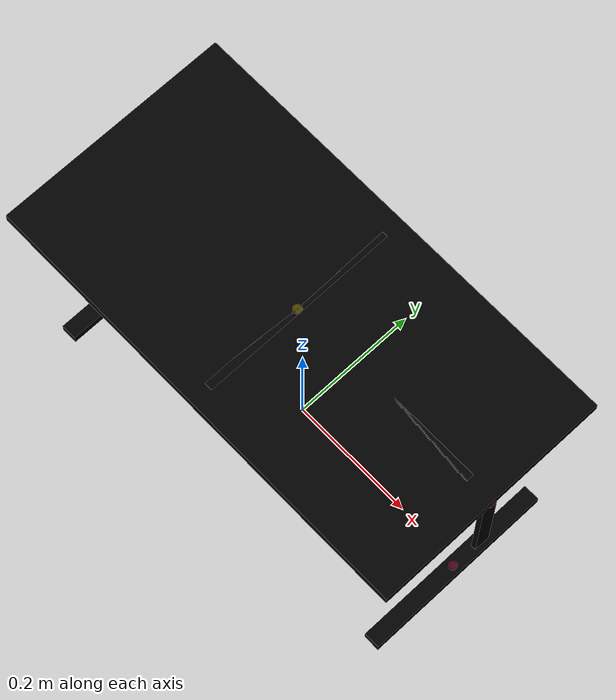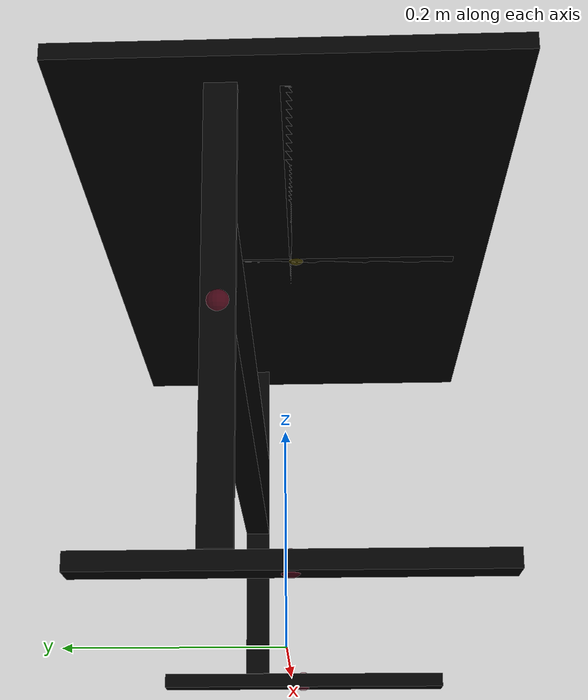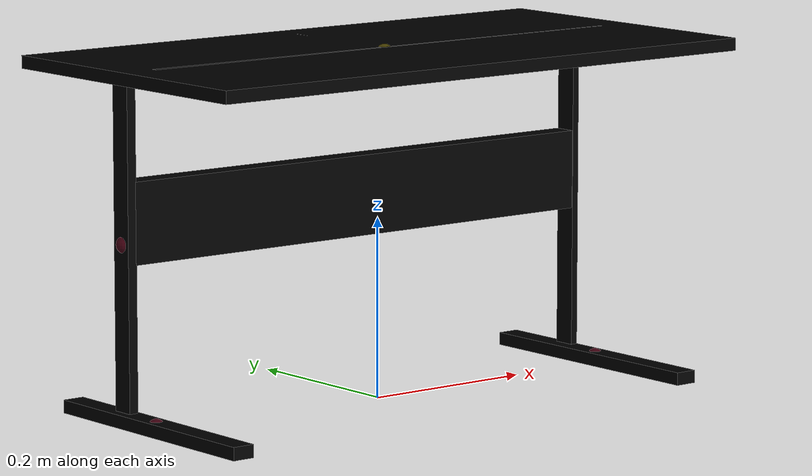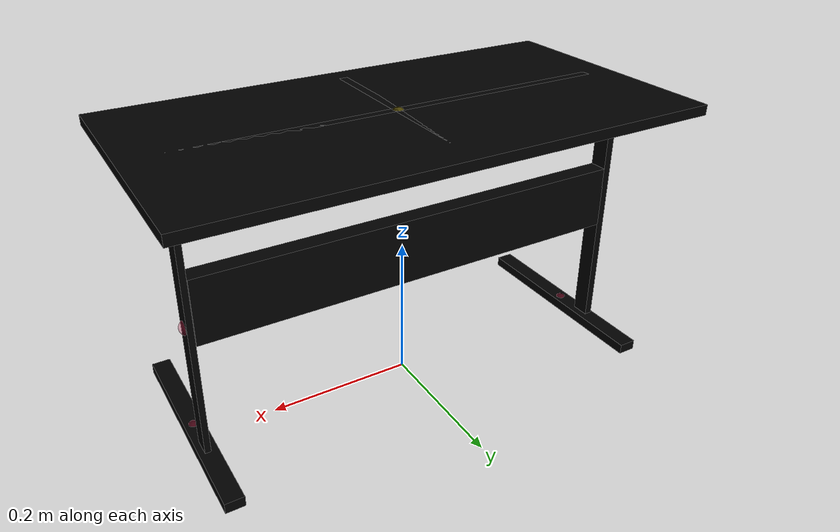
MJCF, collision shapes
<mujoco model="desk_fredrik_0430">
  <custom>
    <numeric data="-0.232087 0.177704 0.003418 0.706993 -0.0127 0.706993 0.0127" name="0_part0_initpos" />
    <numeric data="0.010241 -0.093193 0.012873 0.0 -0.999909 0.0135 -0.0" name="5_part5_initpos" />
    <numeric data="0.492174 0.029834 0.01267 -0.497291 0.497291 -0.502694 0.502694" name="4_part4_initpos" />
    <numeric data="0.204071 0.179597 0.004666 0.013442 -0.706979 -0.013442 -0.706979" name="3_part3_initpos" />
    <numeric data="0.200774 0.283085 0.007644 0.710702 -0.0 0.0 -0.703493" name="2_part2_initpos" />
    <numeric data="-0.167313 0.290658 0.007644 0.735632 -0.0 -0.0 -0.677381" name="1_part1_initpos" />
  </custom>
  <asset>
    <mesh file="desk_fredrik_0430/0.stl" name="part0" scale="0.0005 0.0005 0.0005" />
    <mesh file="desk_fredrik_0430/5.stl" name="part5" scale="0.0005 0.0005 0.0005" />
    <mesh file="desk_fredrik_0430/4.stl" name="part4" scale="0.0005 0.0005 0.0005" />
    <mesh file="desk_fredrik_0430/3.stl" name="part3" scale="0.0005 0.0005 0.0005" />
    <mesh file="desk_fredrik_0430/2.stl" name="part2" scale="0.0005 0.0005 0.0005" />
    <mesh file="desk_fredrik_0430/1.stl" name="part1" scale="0.0005 0.0005 0.0005" />
  </asset>
  <worldbody><body name="combined_body" pos="0.31 0.04 0.19814999389648437" quat="1 0 0 0"><geom conaffinity="0" contype="0" density="0" mesh="part0" name="0_part0_mesh" pos="0.0 0.0 0.0" rgba="0.82 0.71 0.55 1" type="mesh" quat="1 0 0 0" />
      <geom density="50" name="noviz_collision_0_part0_0" pos="0.0 0.0 0.0" quat="1 0 0 0" rgba="0 0 0 0" size="0.00402027 0.012700005 0.1800624" solref="0.001 1" type="box" />
    <site name="0_part0_horizontal_radius_site" pos="0.0 0.0 0.0" quat="1 0 0 0" rgba="0 0 0 0" size="0.01" />
      <site name="0_part0_top_site" pos="0.0 0.0 0.0" quat="1 0 0 0" rgba="0 0 0 0" size="0.01" />
      <site name="0_part0_bottom_site" pos="0.0 0.0 0.0" quat="1 0 0 0" rgba="0 0 0 0" size="0.01" />
      <site name="0_part0_corner_site8" pos="0.0 0.0 0.0" quat="1 0 0 0" rgba="0 0 0 0" size="0.01" />
      <site name="0_part0_corner_site7" pos="0.0 0.0 0.0" quat="1 0 0 0" rgba="0 0 0 0" size="0.01" />
      <site name="0_part0_corner_site6" pos="0.0 0.0 0.0" quat="1 0 0 0" rgba="0 0 0 0" size="0.01" />
      <site name="0_part0_corner_site5" pos="0.0 0.0 0.0" quat="1 0 0 0" rgba="0 0 0 0" size="0.01" />
      <site name="0_part0_corner_site4" pos="0.0 0.0 0.0" quat="1 0 0 0" rgba="0 0 0 0" size="0.01" />
      <site name="0_part0_corner_site3" pos="0.0 0.0 0.0" quat="1 0 0 0" rgba="0 0 0 0" size="0.01" />
      <site name="0_part0_corner_site2" pos="0.0 0.0 0.0" quat="1 0 0 0" rgba="0 0 0 0" size="0.01" />
      <site name="0_part0_corner_site1" pos="0.0 0.0 0.0" quat="1 0 0 0" rgba="0 0 0 0" size="0.01" />
      <site name="leg-base,0,180,conn_site1" pos="0.0 0.0 0.0" quat="1 0 0 0" rgba="0.9019 0.0980 0.2941 0.3" size="0.01" />
      <site name="leg-midsupport,0,180,conn_site1" pos="0.0 0.0 0.0" quat="1 0 0 0" rgba="0.2352 0.7058 0.2941 0.3" size="0.01" />
      <site name="leg-toppanel,0,180,conn_site1" pos="0.0 0.0 0.0" quat="1 0 0 0" rgba="1.0 0.8823 0.0980 0.3" size="0.01" />
      <geom conaffinity="0" contype="0" density="0" mesh="part5" name="5_part5_mesh" pos="-0.3094328003 -0.0507999954 0.18415" rgba="0.82 0.71 0.55 1" type="mesh" quat="1 0 0 0" />
      <geom density="50" name="noviz_collision_5_part5_0" pos="-0.3094328003 -0.0507999954 0.18415" quat="1 0 0 0" rgba="0 0 0 0" size="0.34925 0.18190450000000002 0.007" solref="0.001 1" type="box" />
      <geom density="50" name="noviz_collision_5_part5_1" pos="-0.3094328003 -0.0507999954 0.18415" quat="1 0 0 0" rgba="0 0 0 0" size="0.00625 0.15225 0.007" solref="0.001 1" type="box" />
      <geom density="50" name="noviz_collision_5_part5_2" pos="-0.3094328003 -0.0507999954 0.18415" quat="1 0 0 0" rgba="0 0 0 0" size="0.00625 0.15225 0.007" solref="0.001 1" type="box" />
      <geom density="50" name="noviz_collision_5_part5_3" pos="-0.3094328003 -0.0507999954 0.18415" quat="1 0 0 0" rgba="0 0 0 0" size="0.30875 0.00625 0.007" solref="0.001 1" type="box" />
      <geom density="50" name="noviz_collision_5_part5_4" pos="-0.3094328003 -0.0507999954 0.18415" quat="1 0 0 0" rgba="0 0 0 0" size="0.30875 0.00625 0.007" solref="0.001 1" type="box" />
    <site name="5_part5_horizontal_radius_site" pos="-0.3094328003 -0.0507999954 0.18415" quat="1 0 0 0" rgba="0 0 0 0" size="0.01" />
      <site name="5_part5_top_site" pos="-0.3094328003 -0.0507999954 0.18415" quat="1 0 0 0" rgba="0 0 0 0" size="0.01" />
      <site name="5_part5_bottom_site" pos="-0.3094328003 -0.0507999954 0.18415" quat="1 0 0 0" rgba="0 0 0 0" size="0.01" />
      <site name="5_part5_corner_site8" pos="-0.3094328003 -0.0507999954 0.18415" quat="1 0 0 0" rgba="0 0 0 0" size="0.01" />
      <site name="5_part5_corner_site7" pos="-0.3094328003 -0.0507999954 0.18415" quat="1 0 0 0" rgba="0 0 0 0" size="0.01" />
      <site name="5_part5_corner_site6" pos="-0.3094328003 -0.0507999954 0.18415" quat="1 0 0 0" rgba="0 0 0 0" size="0.01" />
      <site name="5_part5_corner_site5" pos="-0.3094328003 -0.0507999954 0.18415" quat="1 0 0 0" rgba="0 0 0 0" size="0.01" />
      <site name="5_part5_corner_site4" pos="-0.3094328003 -0.0507999954 0.18415" quat="1 0 0 0" rgba="0 0 0 0" size="0.01" />
      <site name="5_part5_corner_site3" pos="-0.3094328003 -0.0507999954 0.18415" quat="1 0 0 0" rgba="0 0 0 0" size="0.01" />
      <site name="5_part5_corner_site2" pos="-0.3094328003 -0.0507999954 0.18415" quat="1 0 0 0" rgba="0 0 0 0" size="0.01" />
      <site name="5_part5_corner_site1" pos="-0.3094328003 -0.0507999954 0.18415" quat="1 0 0 0" rgba="0 0 0 0" size="0.01" />
      <site name="toppanel-leg,0,180,conn_site2" pos="-0.3094328003 -0.0507999954 0.18415" quat="1 0 0 0" rgba="1.0 0.8823 0.0980 0.3" size="0.01" />
      <site name="toppanel-leg,0,180,conn_site1" pos="-0.3094328003 -0.0507999954 0.18415" quat="1 0 0 0" rgba="1.0 0.8823 0.0980 0.3" size="0.01" />
      <geom conaffinity="0" contype="0" density="0" mesh="part4" name="4_part4_mesh" pos="-0.3094328022 0.0 0.0232076782" rgba="0.82 0.71 0.55 1" type="mesh" quat="1 0 0 0" />
      <geom density="50" name="noviz_collision_4_part4_0" pos="-0.3094328022 0.0 0.0232076782" quat="1 0 0 0" rgba="0 0 0 0" size="0.30473669999999997 0.012700005 0.044449995" solref="0.001 1" type="box" />
    <site name="4_part4_horizontal_radius_site" pos="-0.3094328022 0.0 0.0232076782" quat="1 0 0 0" rgba="0 0 0 0" size="0.01" />
      <site name="4_part4_top_site" pos="-0.3094328022 0.0 0.0232076782" quat="1 0 0 0" rgba="0 0 0 0" size="0.01" />
      <site name="4_part4_bottom_site" pos="-0.3094328022 0.0 0.0232076782" quat="1 0 0 0" rgba="0 0 0 0" size="0.01" />
      <site name="4_part4_corner_site8" pos="-0.3094328022 0.0 0.0232076782" quat="1 0 0 0" rgba="0 0 0 0" size="0.01" />
      <site name="4_part4_corner_site7" pos="-0.3094328022 0.0 0.0232076782" quat="1 0 0 0" rgba="0 0 0 0" size="0.01" />
      <site name="4_part4_corner_site6" pos="-0.3094328022 0.0 0.0232076782" quat="1 0 0 0" rgba="0 0 0 0" size="0.01" />
      <site name="4_part4_corner_site5" pos="-0.3094328022 0.0 0.0232076782" quat="1 0 0 0" rgba="0 0 0 0" size="0.01" />
      <site name="4_part4_corner_site4" pos="-0.3094328022 0.0 0.0232076782" quat="1 0 0 0" rgba="0 0 0 0" size="0.01" />
      <site name="4_part4_corner_site3" pos="-0.3094328022 0.0 0.0232076782" quat="1 0 0 0" rgba="0 0 0 0" size="0.01" />
      <site name="4_part4_corner_site2" pos="-0.3094328022 0.0 0.0232076782" quat="1 0 0 0" rgba="0 0 0 0" size="0.01" />
      <site name="4_part4_corner_site1" pos="-0.3094328022 0.0 0.0232076782" quat="1 0 0 0" rgba="0 0 0 0" size="0.01" />
      <site name="midsupport-leg,0,180,conn_site2" pos="-0.3094328022 0.0 0.0232076782" quat="1 0 0 0" rgba="0.2352 0.7058 0.2941 0.3" size="0.01" />
      <site name="midsupport-leg,0,180,conn_site1" pos="-0.3094328022 0.0 0.0232076782" quat="1 0 0 0" rgba="0.2352 0.7058 0.2941 0.3" size="0.01" />
      <geom conaffinity="0" contype="0" density="0" mesh="part3" name="3_part3_mesh" pos="-0.6188655814999999 0.0 0.0" rgba="0.82 0.71 0.55 1" type="mesh" quat="1 0 0 0" />
      <geom density="50" name="noviz_collision_3_part3_0" pos="-0.6188655814999999 0.0 0.0" quat="1 0 0 0" rgba="0 0 0 0" size="0.005371885 0.012700005 0.1800624" solref="0.001 1" type="box" />
    <site name="3_part3_horizontal_radius_site" pos="-0.6188655814999999 0.0 0.0" quat="1 0 0 0" rgba="0 0 0 0" size="0.01" />
      <site name="3_part3_top_site" pos="-0.6188655814999999 0.0 0.0" quat="1 0 0 0" rgba="0 0 0 0" size="0.01" />
      <site name="3_part3_bottom_site" pos="-0.6188655814999999 0.0 0.0" quat="1 0 0 0" rgba="0 0 0 0" size="0.01" />
      <site name="3_part3_corner_site8" pos="-0.6188655814999999 0.0 0.0" quat="1 0 0 0" rgba="0 0 0 0" size="0.01" />
      <site name="3_part3_corner_site7" pos="-0.6188655814999999 0.0 0.0" quat="1 0 0 0" rgba="0 0 0 0" size="0.01" />
      <site name="3_part3_corner_site6" pos="-0.6188655814999999 0.0 0.0" quat="1 0 0 0" rgba="0 0 0 0" size="0.01" />
      <site name="3_part3_corner_site5" pos="-0.6188655814999999 0.0 0.0" quat="1 0 0 0" rgba="0 0 0 0" size="0.01" />
      <site name="3_part3_corner_site4" pos="-0.6188655814999999 0.0 0.0" quat="1 0 0 0" rgba="0 0 0 0" size="0.01" />
      <site name="3_part3_corner_site3" pos="-0.6188655814999999 0.0 0.0" quat="1 0 0 0" rgba="0 0 0 0" size="0.01" />
      <site name="3_part3_corner_site2" pos="-0.6188655814999999 0.0 0.0" quat="1 0 0 0" rgba="0 0 0 0" size="0.01" />
      <site name="3_part3_corner_site1" pos="-0.6188655814999999 0.0 0.0" quat="1 0 0 0" rgba="0 0 0 0" size="0.01" />
      <site name="leg-base,0,180,conn_site2" pos="-0.6188655814999999 0.0 0.0" quat="1 0 0 0" rgba="0.9019 0.0980 0.2941 0.3" size="0.01" />
      <site name="leg-midsupport,0,180,conn_site2" pos="-0.6188655814999999 0.0 0.0" quat="1 0 0 0" rgba="0.2352 0.7058 0.2941 0.3" size="0.01" />
      <site name="leg-toppanel,0,180,conn_site2" pos="-0.6188655814999999 0.0 0.0" quat="1 0 0 0" rgba="1.0 0.8823 0.0980 0.3" size="0.01" />
      <geom conaffinity="0" contype="0" density="0" mesh="part2" name="2_part2_mesh" pos="-0.6173444983 -0.05079999255 -0.18917595825" rgba="0.82 0.71 0.55 1" type="mesh" quat="1 0 0 0" />
      <geom density="50" name="noviz_collision_2_part2_0" pos="-0.6173444983 -0.05079999255 -0.18917595825" quat="1 0 0 0" rgba="0 0 0 0" size="0.012678710000000001 0.15283365000000002 0.00715851" solref="0.001 1" type="box" />
    <site name="2_part2_horizontal_radius_site" pos="-0.6173444983 -0.05079999255 -0.18917595825" quat="1 0 0 0" rgba="0 0 0 0" size="0.01" />
      <site name="2_part2_top_site" pos="-0.6173444983 -0.05079999255 -0.18917595825" quat="1 0 0 0" rgba="0 0 0 0" size="0.01" />
      <site name="2_part2_bottom_site" pos="-0.6173444983 -0.05079999255 -0.18917595825" quat="1 0 0 0" rgba="0 0 0 0" size="0.01" />
      <site name="2_part2_corner_site8" pos="-0.6173444983 -0.05079999255 -0.18917595825" quat="1 0 0 0" rgba="0 0 0 0" size="0.01" />
      <site name="2_part2_corner_site7" pos="-0.6173444983 -0.05079999255 -0.18917595825" quat="1 0 0 0" rgba="0 0 0 0" size="0.01" />
      <site name="2_part2_corner_site6" pos="-0.6173444983 -0.05079999255 -0.18917595825" quat="1 0 0 0" rgba="0 0 0 0" size="0.01" />
      <site name="2_part2_corner_site5" pos="-0.6173444983 -0.05079999255 -0.18917595825" quat="1 0 0 0" rgba="0 0 0 0" size="0.01" />
      <site name="2_part2_corner_site4" pos="-0.6173444983 -0.05079999255 -0.18917595825" quat="1 0 0 0" rgba="0 0 0 0" size="0.01" />
      <site name="2_part2_corner_site3" pos="-0.6173444983 -0.05079999255 -0.18917595825" quat="1 0 0 0" rgba="0 0 0 0" size="0.01" />
      <site name="2_part2_corner_site2" pos="-0.6173444983 -0.05079999255 -0.18917595825" quat="1 0 0 0" rgba="0 0 0 0" size="0.01" />
      <site name="2_part2_corner_site1" pos="-0.6173444983 -0.05079999255 -0.18917595825" quat="1 0 0 0" rgba="0 0 0 0" size="0.01" />
      <site name="base-leg,0,180,conn_site2" pos="-0.6173444983 -0.05079999255 -0.18917595825" quat="1 0 0 0" rgba="0.9019 0.0980 0.2941 0.3" size="0.01" />
      <geom conaffinity="0" contype="0" density="0" mesh="part1" name="1_part1_mesh" pos="-0.0015211156 -0.05079999255 -0.18917595825" rgba="0.82 0.71 0.55 1" type="mesh" quat="1 0 0 0" />
      <geom density="50" name="noviz_collision_1_part1_0" pos="-0.0015211156 -0.05079999255 -0.18917595825" quat="1 0 0 0" rgba="0 0 0 0" size="0.012721295 0.15283365000000002 0.00715851" solref="0.001 1" type="box" />
    <site name="1_part1_horizontal_radius_site" pos="-0.0015211156 -0.05079999255 -0.18917595825" quat="1 0 0 0" rgba="0 0 0 0" size="0.01" />
      <site name="1_part1_top_site" pos="-0.0015211156 -0.05079999255 -0.18917595825" quat="1 0 0 0" rgba="0 0 0 0" size="0.01" />
      <site name="1_part1_bottom_site" pos="-0.0015211156 -0.05079999255 -0.18917595825" quat="1 0 0 0" rgba="0 0 0 0" size="0.01" />
      <site name="1_part1_corner_site8" pos="-0.0015211156 -0.05079999255 -0.18917595825" quat="1 0 0 0" rgba="0 0 0 0" size="0.01" />
      <site name="1_part1_corner_site7" pos="-0.0015211156 -0.05079999255 -0.18917595825" quat="1 0 0 0" rgba="0 0 0 0" size="0.01" />
      <site name="1_part1_corner_site6" pos="-0.0015211156 -0.05079999255 -0.18917595825" quat="1 0 0 0" rgba="0 0 0 0" size="0.01" />
      <site name="1_part1_corner_site5" pos="-0.0015211156 -0.05079999255 -0.18917595825" quat="1 0 0 0" rgba="0 0 0 0" size="0.01" />
      <site name="1_part1_corner_site4" pos="-0.0015211156 -0.05079999255 -0.18917595825" quat="1 0 0 0" rgba="0 0 0 0" size="0.01" />
      <site name="1_part1_corner_site3" pos="-0.0015211156 -0.05079999255 -0.18917595825" quat="1 0 0 0" rgba="0 0 0 0" size="0.01" />
      <site name="1_part1_corner_site2" pos="-0.0015211156 -0.05079999255 -0.18917595825" quat="1 0 0 0" rgba="0 0 0 0" size="0.01" />
      <site name="1_part1_corner_site1" pos="-0.0015211156 -0.05079999255 -0.18917595825" quat="1 0 0 0" rgba="0 0 0 0" size="0.01" />
      <site name="base-leg,0,180,conn_site1" pos="-0.0015211156 -0.05079999255 -0.18917595825" quat="1 0 0 0" rgba="0.9019 0.0980 0.2941 0.3" size="0.01" />
      </body></worldbody><actuator />
  <sensor />
  <contact />
  <default />
</mujoco>
